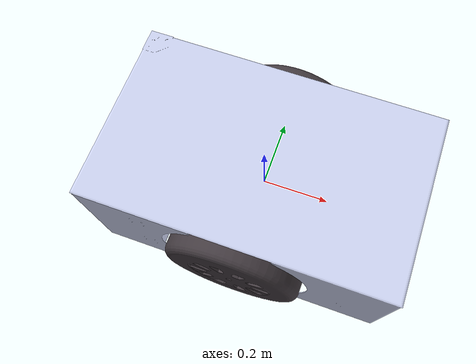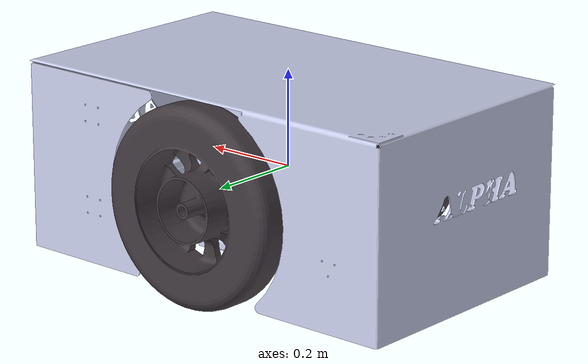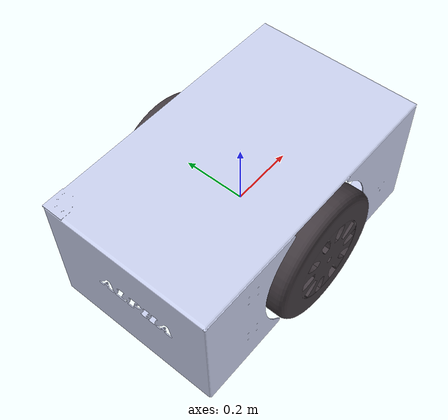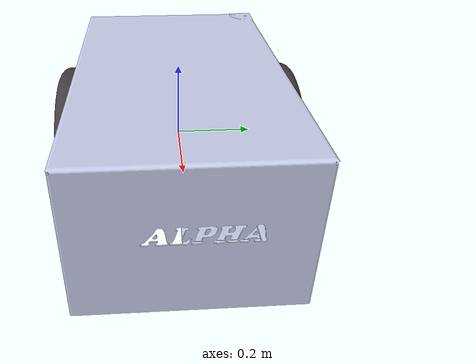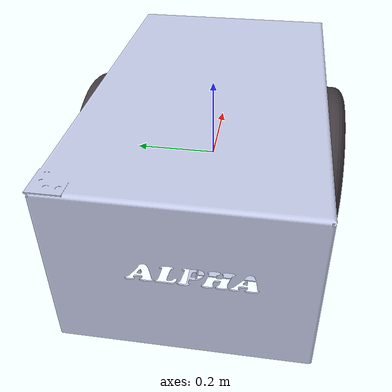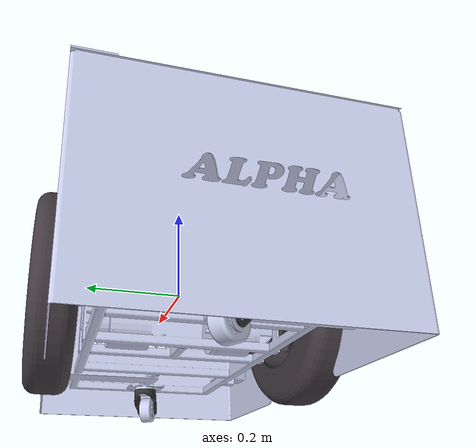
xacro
<?xml version="1.0"?>
<robot xmlns:xacro="http://www.ros.org/wiki/xacro" >

  <material name="orange">
      <color rgba="1 0.3 0.1 1"/>
  </material>
  <material name="aquablue" >
    <color rgba="0.00784313725490196 0.8470588235294118 0.9137254901960784 1.0" />
  </material>
  <material name="black">
        <color rgba="0.26 0.23 0.25 1.0"/>
  </material>

  <link name="base_link">
    <inertial>
      <origin xyz="0 0 0" rpy="0 0 0"/>
      <mass value="11.87"/>
      <inertia ixx="0.23942" ixy="0" ixz="0.0018807" iyy="0.42955" iyz="0" izz="0.28243"/>
    </inertial>
    <visual>
      <!-- Shift mesh so robot body is centered on base_link origin -->
      <origin xyz="-0.2691 0.6850 -0.6936" rpy="0 0 0"/>
      <geometry>
        <mesh filename="file:///home/naveen/alpha_bot/src/alpha_bot/meshes/base_link.STL"/>
      </geometry>
      <material name="orange">
        <color rgba="0.79216 0.81961 0.93333 1"/>
      </material>
    </visual>
    <collision>
      <origin xyz="-0.2691 0.6850 -0.6936" rpy="0 0 0"/>
      <geometry>
        <mesh filename="file:///home/naveen/alpha_bot/src/alpha_bot/meshes/base_link.STL"/>
      </geometry>
    </collision>
  </link>

  <link name="right_wheel">
    <inertial>
      <origin xyz="0.0000 -0.0444 0.0000" rpy="0 0 0"/>
      <mass value="0.5"/>
      <inertia ixx="0.005582" ixy="0" ixz="0" iyy="0.010506" iyz="0" izz="0.005582"/>
    </inertial>
    <visual>
      <origin xyz="0 0 0" rpy="0 0 0"/>
      <geometry>
        <mesh filename="file:///home/naveen/alpha_bot/src/alpha_bot/meshes/left_wheel.STL"/>
      </geometry>
      <material name="black">
        <color rgba="0.26 0.23 0.25 1.0"/>
      </material>
    </visual>
    <collision>
      <origin xyz="0 0 0" rpy="0 0 0"/>
      <geometry>
        <mesh filename="file:///home/naveen/alpha_bot/src/alpha_bot/meshes/left_wheel.STL"/>
      </geometry>
    </collision>
  </link>

  <joint name="right_wheel_joint" type="continuous">
    <!-- Original: (0.26915, -1.0, 0.67469) minus CoM offset (0.2691, -0.685, 0.6936) -->
    <origin xyz="0.00005 -0.31500 -0.01891" rpy="-3.1416 1.5448 -3.1416"/>
    <parent link="base_link"/>
    <child link="right_wheel"/>
    <axis xyz="0 1 0"/>
  </joint>

  <link name="left_wheel">
    <inertial>
      <origin xyz="0.0000 0 0.0000" rpy="0 0 0"/>
      <mass value="0.5"/>
      <inertia ixx="0.005582" ixy="0" ixz="0" iyy="0.010506" iyz="0" izz="0.005582"/>
    </inertial>
    <visual>
      <origin xyz="0 0 0" rpy="0 0 0"/>
      <geometry>
        <mesh filename="file:///home/naveen/alpha_bot/src/alpha_bot/meshes/right_wheel.STL"/>
      </geometry>
      <material name="black">
        <color rgba="0.26 0.23 0.25 1.0"/>
      </material>
    </visual>
    <collision>
      <origin xyz="0 0 0" rpy="0 0 0"/>
      <geometry>
        <mesh filename="file:///home/naveen/alpha_bot/src/alpha_bot/meshes/right_wheel.STL"/>
      </geometry>
    </collision>
  </link>

  <joint name="left_wheel_joint" type="continuous">
    <!-- Original: (0.26915, -0.37359, 0.67469) minus CoM offset (0.2691, -0.685, 0.6936) -->
    <origin xyz="0.00005 0.31141 -0.01891" rpy="-3.1416 1.5448 -3.1416"/>
    <parent link="base_link"/>
    <child link="left_wheel"/>
    <axis xyz="0 1 0"/>
  </joint>

  <link name="back_castor">
    <inertial>
      <origin xyz="-0.0000 0.0075 -0.0305" rpy="0 0 0"/>
      <mass value="0.016198"/>
      <inertia ixx="9.6663e-06" ixy="0" ixz="0" iyy="1.2353e-05" iyz="0" izz="1.4421e-05"/>
    </inertial>
    <visual>
      <origin xyz="0 0 0" rpy="0 0 0"/>
      <geometry>
        <mesh filename="file:///home/naveen/alpha_bot/src/alpha_bot/meshes/back_castor.STL"/>
      </geometry>
      <material name="">
        <color rgba="0.2 0.2 0.2 1"/>
      </material>
    </visual>
    <collision>
      <origin xyz="0 0 0" rpy="0 0 0"/>
      <geometry>
        <mesh filename="file:///home/naveen/alpha_bot/src/alpha_bot/meshes/back_castor.STL"/>
      </geometry>
    </collision>
  </link>

  <joint name="back_castor_joint" type="fixed">
    <!-- Original: (-0.10911, -0.68499, 0.49599) minus CoM offset (0.2691, -0.685, 0.6936) -->
    <origin xyz="-0.37821 0.00001 -0.19761" rpy="-3.1416 0 -2.6028"/>
    <parent link="base_link"/>
    <child link="back_castor"/>
    <axis xyz="0 0 1"/>
  </joint>

  <link name="back_wheel">
    <inertial>
      <origin xyz="0.0000 0.0015 0.0000" rpy="0 0 0"/>
      <mass value="0.10036"/>
      <inertia ixx="3.4167e-05" ixy="0" ixz="0" iyy="5.2134e-05" iyz="0" izz="3.4167e-05"/>
    </inertial>
    <visual>
      <origin xyz="0 0 0" rpy="0 0 0"/>
      <geometry>
        <mesh filename="file:///home/naveen/alpha_bot/src/alpha_bot/meshes/back_wheel.STL"/>
      </geometry>
      <material name="">
        <color rgba="0.79216 0.81961 0.93333 1"/>
      </material>
    </visual>
    <collision>
      <origin xyz="0 0 0" rpy="0 0 0"/>
      <geometry>
        <mesh filename="file:///home/naveen/alpha_bot/src/alpha_bot/meshes/back_wheel.STL"/>
      </geometry>
    </collision>
  </link>

  <joint name="back_wheel_joint" type="fixed">
    <origin xyz="0 0.030947 -0.0125" rpy="0 1.2749 -1.5708"/>
    <parent link="back_castor"/>
    <child link="back_wheel"/>
    <axis xyz="0 1 0"/>
  </joint>

  <link name="front_castor">
    <inertial>
      <origin xyz="-0.0000 0.0075 -0.0305" rpy="0 0 0"/>
      <mass value="0.016198"/>
      <inertia ixx="9.6663e-06" ixy="0" ixz="0" iyy="1.2353e-05" iyz="0" izz="1.4421e-05"/>
    </inertial>
    <visual>
      <origin xyz="0 0 0" rpy="0 0 0"/>
      <geometry>
        <mesh filename="file:///home/naveen/alpha_bot/src/alpha_bot/meshes/front_castor.STL"/>
      </geometry>
      <material name="">
        <color rgba="0.2 0.2 0.2 1"/>
      </material>
    </visual>
    <collision>
      <origin xyz="0 0 0" rpy="0 0 0"/>
      <geometry>
        <mesh filename="file:///home/naveen/alpha_bot/src/alpha_bot/meshes/front_castor.STL"/>
      </geometry>
    </collision>
  </link>

  <joint name="front_castor_joint" type="fixed">
    <!-- Original: (0.64739, -0.68499, 0.49599) minus CoM offset (0.2691, -0.685, 0.6936) -->
    <origin xyz="0.37829 0.00001 -0.19761" rpy="3.1416 0 1.1185"/>
    <parent link="base_link"/>
    <child link="front_castor"/>
    <axis xyz="0 0 1"/>
  </joint>

  <link name="front_wheel">
    <inertial>
      <origin xyz="0.0000 0.0012 0.0000" rpy="0 0 0"/>
      <mass value="0.10036"/>
      <inertia ixx="3.4167e-05" ixy="0" ixz="0" iyy="5.2134e-05" iyz="0" izz="3.4167e-05"/>
    </inertial>
    <visual>
      <origin xyz="0 0 0" rpy="0 0 0"/>
      <geometry>
        <mesh filename="file:///home/naveen/alpha_bot/src/alpha_bot/meshes/front_wheel.STL"/>
      </geometry>
      <material name="">
        <color rgba="0.79216 0.81961 0.93333 1"/>
      </material>
    </visual>
    <collision>
      <origin xyz="0 0 0" rpy="0 0 0"/>
      <geometry>
        <mesh filename="file:///home/naveen/alpha_bot/src/alpha_bot/meshes/front_wheel.STL"/>
      </geometry>
    </collision>
  </link>

  <joint name="front_wheel_joint" type="fixed">
    <origin xyz="0 0.030947 -0.0125" rpy="0 0.22579 -1.5708"/>
    <parent link="front_castor"/>
    <child link="front_wheel"/>
    <axis xyz="0 1 0"/>
  </joint>
      <!-- BASE_FOOTPRINT -->
<link name="base_footprint">
    </link>

    <joint name="base_footprint_joint" type="fixed">
        <parent link="base_link"/>
        <child link="base_footprint"/>
        <!-- base_footprint is on the ground: wheel_radius(0.205) + axle_z_offset(0.019) below base_link -->
        <origin xyz="0 0 -0.224" rpy="0 0 0"/>
    </joint>

  <gazebo reference="back_wheel">
  <mu1>0.1</mu1>
  <mu2>0.1</mu2>
  <kp>1000000.0</kp>
  <kd>100.0</kd>
  <minDepth>0.001</minDepth>
</gazebo>
  <gazebo reference="front_wheel">
  <mu1>0.1</mu1>
  <mu2>0.1</mu2>
  <kp>1000000.0</kp>
  <kd>100.0</kd>cd ~/alpha_bot
  <minDepth>0.001</minDepth>
</gazebo>
</robot>
